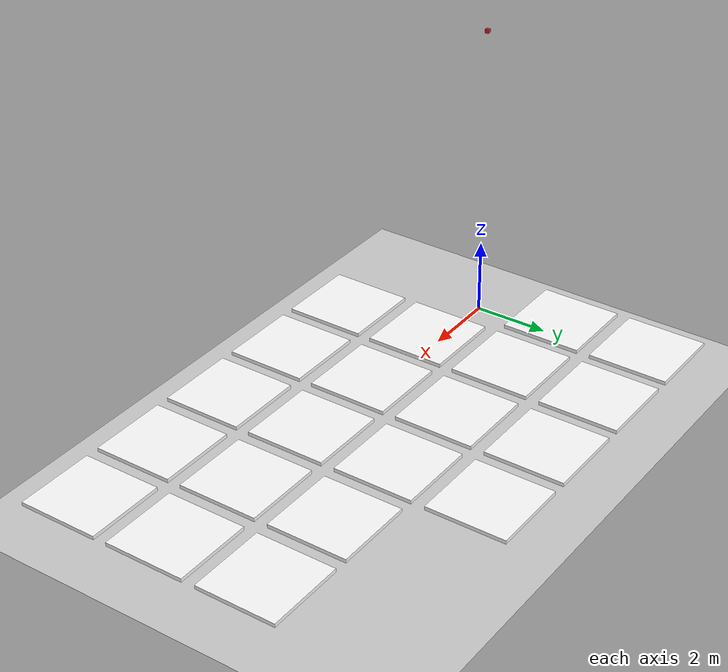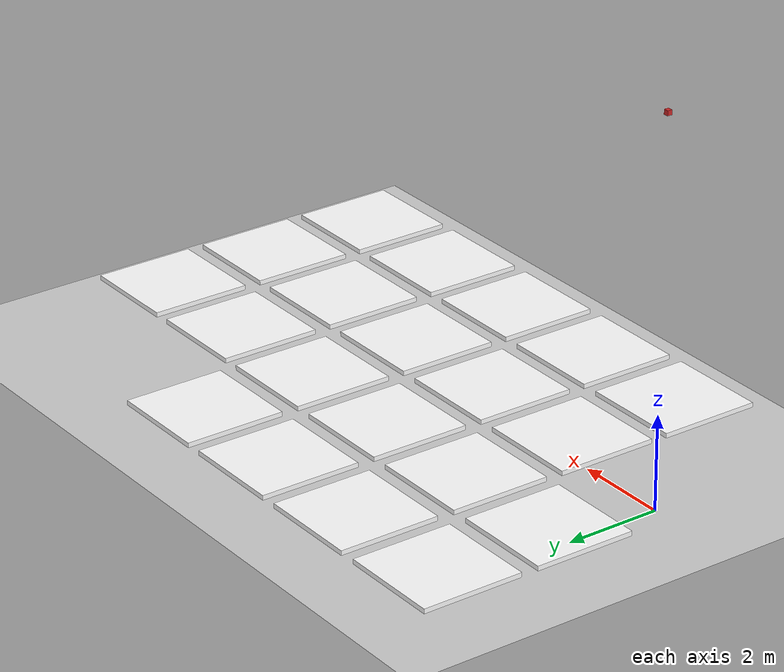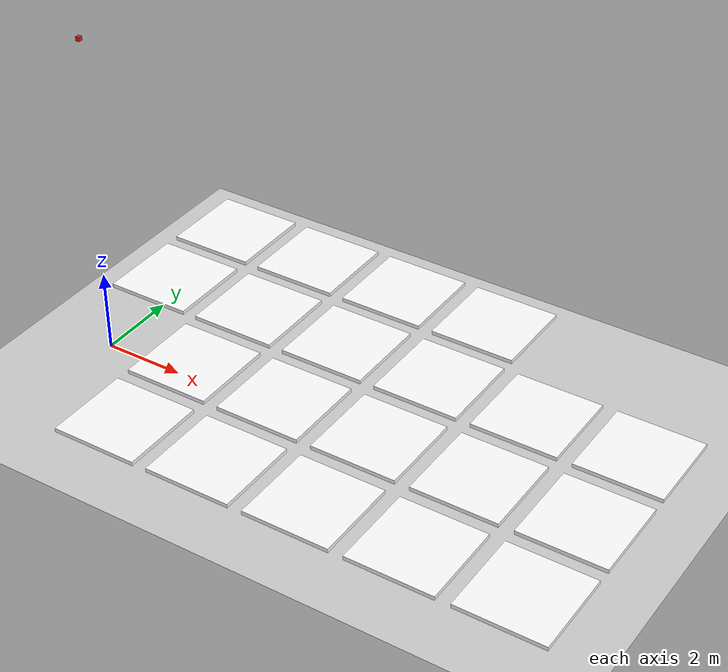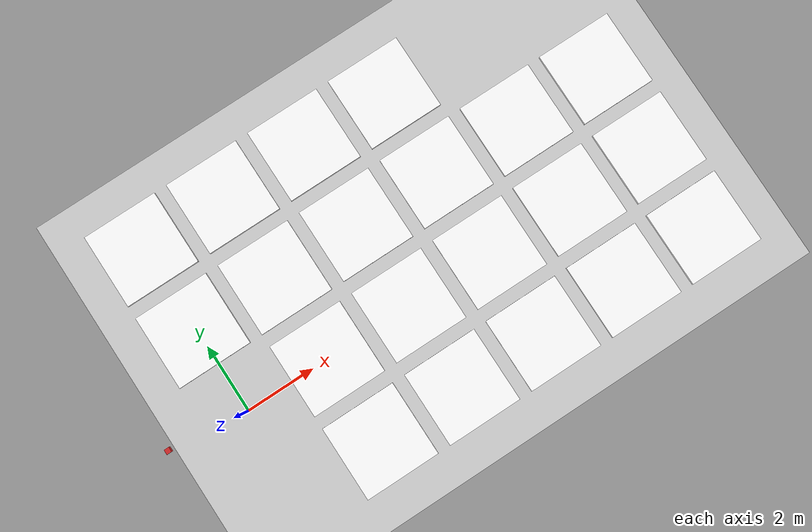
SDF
<sdf version="1.7">
 <world name="default">
  <model name="ground_plane">
   <static>1</static>
   <link name="link">
    <collision name="collision">
     <geometry><plane><normal>0 0 1</normal><size>100 100</size></plane></geometry>
     <surface>
      <contact><collide_bitmask>65535</collide_bitmask></contact>
      <friction><ode><mu>100</mu><mu2>50</mu2></ode></friction>
     </surface>
    </collision>
    <visual name="visual">
     <cast_shadows>0</cast_shadows>
     <geometry><plane><normal>0 0 1</normal><size>100 100</size></plane></geometry>
     <material>
      <script><uri>file://media/materials/scripts/gazebo.material</uri><name>Gazebo/Grey</name></script>
     </material>
    </visual>
   </link>
  </model>
  <model name="top_view_fuel_cluster_0_6">
   <link name="link">
    <inertial>
     <mass>0.489843</mass>
     <inertia>
      <ixx>0.0410659</ixx>
      <ixy>0</ixy>
      <ixz>0</ixz>
      <iyy>0.0410658</iyy>
      <iyz>0</iyz>
      <izz>0.0816405</izz>
     </inertia>
    </inertial>
    <visual name="visual">
     <geometry><box><size>2.14 2.14 0.099999</size></box></geometry>
     <material>
      <script>
       <uri>model://top_view_fuel_cluster/materials/scripts</uri>
       <uri>model://top_view_fuel_cluster/materials/textures</uri>
       <name>snf/Diffuse</name>
      </script>
      <shader type="pixel"><normal_map>__default__</normal_map></shader>
      <ambient>0.3 0.3 0.3 1</ambient>
      <diffuse>1 1 1 1</diffuse>
      <specular>0.01 0.01 0.01 1</specular>
      <emissive>0 0 0 1</emissive>
     </material>
    </visual>
    <collision name="collision">
     <geometry><box><size>2.14 2.14 0.100001</size></box></geometry>
     <surface>
      <friction>
       <ode><mu>1</mu><mu2>1</mu2><fdir1>0 0 0</fdir1><slip1>0</slip1><slip2>0</slip2></ode>
       <torsional>
        <coefficient>1</coefficient>
        <patch_radius>0</patch_radius>
        <surface_radius>0</surface_radius>
        <use_patch_radius>1</use_patch_radius>
        <ode><slip>0</slip></ode>
       </torsional>
      </friction>
      <bounce><restitution_coefficient>0</restitution_coefficient><threshold>1e+06</threshold></bounce>
      <contact>
       <collide_without_contact>0</collide_without_contact>
       <collide_without_contact_bitmask>1</collide_without_contact_bitmask>
       <collide_bitmask>1</collide_bitmask>
       <ode>
        <soft_cfm>0</soft_cfm>
        <soft_erp>0.2</soft_erp>
        <kp>1e+13</kp>
        <kd>1</kd>
        <max_vel>0.01</max_vel>
        <min_depth>0</min_depth>
       </ode>
       <bullet>
        <split_impulse>1</split_impulse>
        <split_impulse_penetration_threshold>-0.01</split_impulse_penetration_threshold>
        <soft_cfm>0</soft_cfm>
        <soft_erp>0.2</soft_erp>
        <kp>1e+13</kp>
        <kd>1</kd>
       </bullet>
      </contact>
     </surface>
    </collision>
   </link>
   <static>0</static>
   <pose>2.5 0 0.5 0 -0 0</pose>
  </model>
  <model name="top_view_fuel_cluster_0_7">
   <link name="link">
    <inertial>
     <mass>0.489843</mass>
     <inertia>
      <ixx>0.0410659</ixx>
      <ixy>0</ixy>
      <ixz>0</ixz>
      <iyy>0.0410658</iyy>
      <iyz>0</iyz>
      <izz>0.0816405</izz>
     </inertia>
    </inertial>
    <visual name="visual">
     <geometry><box><size>2.14 2.14 0.099999</size></box></geometry>
     <material>
      <script>
       <uri>model://top_view_fuel_cluster/materials/scripts</uri>
       <uri>model://top_view_fuel_cluster/materials/textures</uri>
       <name>snf/Diffuse</name>
      </script>
      <shader type="pixel"><normal_map>__default__</normal_map></shader>
      <ambient>0.3 0.3 0.3 1</ambient>
      <diffuse>1 1 1 1</diffuse>
      <specular>0.01 0.01 0.01 1</specular>
      <emissive>0 0 0 1</emissive>
     </material>
    </visual>
    <collision name="collision">
     <geometry><box><size>2.14 2.14 0.100001</size></box></geometry>
     <surface>
      <friction>
       <ode><mu>1</mu><mu2>1</mu2><fdir1>0 0 0</fdir1><slip1>0</slip1><slip2>0</slip2></ode>
       <torsional>
        <coefficient>1</coefficient>
        <patch_radius>0</patch_radius>
        <surface_radius>0</surface_radius>
        <use_patch_radius>1</use_patch_radius>
        <ode><slip>0</slip></ode>
       </torsional>
      </friction>
      <bounce><restitution_coefficient>0</restitution_coefficient><threshold>1e+06</threshold></bounce>
      <contact>
       <collide_without_contact>0</collide_without_contact>
       <collide_without_contact_bitmask>1</collide_without_contact_bitmask>
       <collide_bitmask>1</collide_bitmask>
       <ode>
        <soft_cfm>0</soft_cfm>
        <soft_erp>0.2</soft_erp>
        <kp>1e+13</kp>
        <kd>1</kd>
        <max_vel>0.01</max_vel>
        <min_depth>0</min_depth>
       </ode>
       <bullet>
        <split_impulse>1</split_impulse>
        <split_impulse_penetration_threshold>-0.01</split_impulse_penetration_threshold>
        <soft_cfm>0</soft_cfm>
        <soft_erp>0.2</soft_erp>
        <kp>1e+13</kp>
        <kd>1</kd>
       </bullet>
      </contact>
     </surface>
    </collision>
   </link>
   <static>0</static>
   <pose>5 0 0.5 0 -0 0</pose>
  </model>
  <model name="top_view_fuel_cluster_0_8">
   <link name="link">
    <inertial>
     <mass>0.489843</mass>
     <inertia>
      <ixx>0.0410659</ixx>
      <ixy>0</ixy>
      <ixz>0</ixz>
      <iyy>0.0410658</iyy>
      <iyz>0</iyz>
      <izz>0.0816405</izz>
     </inertia>
    </inertial>
    <visual name="visual">
     <geometry><box><size>2.14 2.14 0.099999</size></box></geometry>
     <material>
      <script>
       <uri>model://top_view_fuel_cluster/materials/scripts</uri>
       <uri>model://top_view_fuel_cluster/materials/textures</uri>
       <name>snf/Diffuse</name>
      </script>
      <shader type="pixel"><normal_map>__default__</normal_map></shader>
      <ambient>0.3 0.3 0.3 1</ambient>
      <diffuse>1 1 1 1</diffuse>
      <specular>0.01 0.01 0.01 1</specular>
      <emissive>0 0 0 1</emissive>
     </material>
    </visual>
    <collision name="collision">
     <geometry><box><size>2.14 2.14 0.100001</size></box></geometry>
     <surface>
      <friction>
       <ode><mu>1</mu><mu2>1</mu2><fdir1>0 0 0</fdir1><slip1>0</slip1><slip2>0</slip2></ode>
       <torsional>
        <coefficient>1</coefficient>
        <patch_radius>0</patch_radius>
        <surface_radius>0</surface_radius>
        <use_patch_radius>1</use_patch_radius>
        <ode><slip>0</slip></ode>
       </torsional>
      </friction>
      <bounce><restitution_coefficient>0</restitution_coefficient><threshold>1e+06</threshold></bounce>
      <contact>
       <collide_without_contact>0</collide_without_contact>
       <collide_without_contact_bitmask>1</collide_without_contact_bitmask>
       <collide_bitmask>1</collide_bitmask>
       <ode>
        <soft_cfm>0</soft_cfm>
        <soft_erp>0.2</soft_erp>
        <kp>1e+13</kp>
        <kd>1</kd>
        <max_vel>0.01</max_vel>
        <min_depth>0</min_depth>
       </ode>
       <bullet>
        <split_impulse>1</split_impulse>
        <split_impulse_penetration_threshold>-0.01</split_impulse_penetration_threshold>
        <soft_cfm>0</soft_cfm>
        <soft_erp>0.2</soft_erp>
        <kp>1e+13</kp>
        <kd>1</kd>
       </bullet>
      </contact>
     </surface>
    </collision>
   </link>
   <static>0</static>
   <pose>7.5 0 0.5 0 -0 0</pose>
  </model>
  <model name="top_view_fuel_cluster_0_9">
   <link name="link">
    <inertial>
     <mass>0.489843</mass>
     <inertia>
      <ixx>0.0410659</ixx>
      <ixy>0</ixy>
      <ixz>0</ixz>
      <iyy>0.0410658</iyy>
      <iyz>0</iyz>
      <izz>0.0816405</izz>
     </inertia>
    </inertial>
    <visual name="visual">
     <geometry><box><size>2.14 2.14 0.099999</size></box></geometry>
     <material>
      <script>
       <uri>model://top_view_fuel_cluster/materials/scripts</uri>
       <uri>model://top_view_fuel_cluster/materials/textures</uri>
       <name>snf/Diffuse</name>
      </script>
      <shader type="pixel"><normal_map>__default__</normal_map></shader>
      <ambient>0.3 0.3 0.3 1</ambient>
      <diffuse>1 1 1 1</diffuse>
      <specular>0.01 0.01 0.01 1</specular>
      <emissive>0 0 0 1</emissive>
     </material>
    </visual>
    <collision name="collision">
     <geometry><box><size>2.14 2.14 0.100001</size></box></geometry>
     <surface>
      <friction>
       <ode><mu>1</mu><mu2>1</mu2><fdir1>0 0 0</fdir1><slip1>0</slip1><slip2>0</slip2></ode>
       <torsional>
        <coefficient>1</coefficient>
        <patch_radius>0</patch_radius>
        <surface_radius>0</surface_radius>
        <use_patch_radius>1</use_patch_radius>
        <ode><slip>0</slip></ode>
       </torsional>
      </friction>
      <bounce><restitution_coefficient>0</restitution_coefficient><threshold>1e+06</threshold></bounce>
      <contact>
       <collide_without_contact>0</collide_without_contact>
       <collide_without_contact_bitmask>1</collide_without_contact_bitmask>
       <collide_bitmask>1</collide_bitmask>
       <ode>
        <soft_cfm>0</soft_cfm>
        <soft_erp>0.2</soft_erp>
        <kp>1e+13</kp>
        <kd>1</kd>
        <max_vel>0.01</max_vel>
        <min_depth>0</min_depth>
       </ode>
       <bullet>
        <split_impulse>1</split_impulse>
        <split_impulse_penetration_threshold>-0.01</split_impulse_penetration_threshold>
        <soft_cfm>0</soft_cfm>
        <soft_erp>0.2</soft_erp>
        <kp>1e+13</kp>
        <kd>1</kd>
       </bullet>
      </contact>
     </surface>
    </collision>
   </link>
   <static>0</static>
   <pose>10 0 0.5 0 -0 0</pose>
  </model>
  <model name="top_view_fuel_cluster_0_10">
   <link name="link">
    <inertial>
     <mass>0.489843</mass>
     <inertia>
      <ixx>0.0410659</ixx>
      <ixy>0</ixy>
      <ixz>0</ixz>
      <iyy>0.0410658</iyy>
      <iyz>0</iyz>
      <izz>0.0816405</izz>
     </inertia>
    </inertial>
    <visual name="visual">
     <geometry><box><size>2.14 2.14 0.099999</size></box></geometry>
     <material>
      <script>
       <uri>model://top_view_fuel_cluster/materials/scripts</uri>
       <uri>model://top_view_fuel_cluster/materials/textures</uri>
       <name>snf/Diffuse</name>
      </script>
      <shader type="pixel"><normal_map>__default__</normal_map></shader>
      <ambient>0.3 0.3 0.3 1</ambient>
      <diffuse>1 1 1 1</diffuse>
      <specular>0.01 0.01 0.01 1</specular>
      <emissive>0 0 0 1</emissive>
     </material>
    </visual>
    <collision name="collision">
     <geometry><box><size>2.14 2.14 0.100001</size></box></geometry>
     <surface>
      <friction>
       <ode><mu>1</mu><mu2>1</mu2><fdir1>0 0 0</fdir1><slip1>0</slip1><slip2>0</slip2></ode>
       <torsional>
        <coefficient>1</coefficient>
        <patch_radius>0</patch_radius>
        <surface_radius>0</surface_radius>
        <use_patch_radius>1</use_patch_radius>
        <ode><slip>0</slip></ode>
       </torsional>
      </friction>
      <bounce><restitution_coefficient>0</restitution_coefficient><threshold>1e+06</threshold></bounce>
      <contact>
       <collide_without_contact>0</collide_without_contact>
       <collide_without_contact_bitmask>1</collide_without_contact_bitmask>
       <collide_bitmask>1</collide_bitmask>
       <ode>
        <soft_cfm>0</soft_cfm>
        <soft_erp>0.2</soft_erp>
        <kp>1e+13</kp>
        <kd>1</kd>
        <max_vel>0.01</max_vel>
        <min_depth>0</min_depth>
       </ode>
       <bullet>
        <split_impulse>1</split_impulse>
        <split_impulse_penetration_threshold>-0.01</split_impulse_penetration_threshold>
        <soft_cfm>0</soft_cfm>
        <soft_erp>0.2</soft_erp>
        <kp>1e+13</kp>
        <kd>1</kd>
       </bullet>
      </contact>
     </surface>
    </collision>
   </link>
   <static>0</static>
   <pose>12.5 0 0.5 0 -0 0</pose>
  </model>
  <model name="top_view_fuel_cluster_5_6">
   <link name="link">
    <inertial>
     <mass>0.489843</mass>
     <inertia>
      <ixx>0.0410659</ixx>
      <ixy>0</ixy>
      <ixz>0</ixz>
      <iyy>0.0410658</iyy>
      <iyz>0</iyz>
      <izz>0.0816405</izz>
     </inertia>
    </inertial>
    <visual name="visual">
     <geometry><box><size>2.14 2.14 0.099999</size></box></geometry>
     <material>
      <script>
       <uri>model://top_view_fuel_cluster/materials/scripts</uri>
       <uri>model://top_view_fuel_cluster/materials/textures</uri>
       <name>snf/Diffuse</name>
      </script>
      <shader type="pixel"><normal_map>__default__</normal_map></shader>
      <ambient>0.3 0.3 0.3 1</ambient>
      <diffuse>1 1 1 1</diffuse>
      <specular>0.01 0.01 0.01 1</specular>
      <emissive>0 0 0 1</emissive>
     </material>
    </visual>
    <collision name="collision">
     <geometry><box><size>2.14 2.14 0.100001</size></box></geometry>
     <surface>
      <friction>
       <ode><mu>1</mu><mu2>1</mu2><fdir1>0 0 0</fdir1><slip1>0</slip1><slip2>0</slip2></ode>
       <torsional>
        <coefficient>1</coefficient>
        <patch_radius>0</patch_radius>
        <surface_radius>0</surface_radius>
        <use_patch_radius>1</use_patch_radius>
        <ode><slip>0</slip></ode>
       </torsional>
      </friction>
      <bounce><restitution_coefficient>0</restitution_coefficient><threshold>1e+06</threshold></bounce>
      <contact>
       <collide_without_contact>0</collide_without_contact>
       <collide_without_contact_bitmask>1</collide_without_contact_bitmask>
       <collide_bitmask>1</collide_bitmask>
       <ode>
        <soft_cfm>0</soft_cfm>
        <soft_erp>0.2</soft_erp>
        <kp>1e+13</kp>
        <kd>1</kd>
        <max_vel>0.01</max_vel>
        <min_depth>0</min_depth>
       </ode>
       <bullet>
        <split_impulse>1</split_impulse>
        <split_impulse_penetration_threshold>-0.01</split_impulse_penetration_threshold>
        <soft_cfm>0</soft_cfm>
        <soft_erp>0.2</soft_erp>
        <kp>1e+13</kp>
        <kd>1</kd>
       </bullet>
      </contact>
     </surface>
    </collision>
   </link>
   <static>0</static>
   <pose>2.5 -2.5 0.5 0 -0 0</pose>
  </model>
  <model name="top_view_fuel_cluster_5_7">
   <link name="link">
    <inertial>
     <mass>0.489843</mass>
     <inertia>
      <ixx>0.0410659</ixx>
      <ixy>0</ixy>
      <ixz>0</ixz>
      <iyy>0.0410658</iyy>
      <iyz>0</iyz>
      <izz>0.0816405</izz>
     </inertia>
    </inertial>
    <visual name="visual">
     <geometry><box><size>2.14 2.14 0.099999</size></box></geometry>
     <material>
      <script>
       <uri>model://top_view_fuel_cluster/materials/scripts</uri>
       <uri>model://top_view_fuel_cluster/materials/textures</uri>
       <name>snf/Diffuse</name>
      </script>
      <shader type="pixel"><normal_map>__default__</normal_map></shader>
      <ambient>0.3 0.3 0.3 1</ambient>
      <diffuse>1 1 1 1</diffuse>
      <specular>0.01 0.01 0.01 1</specular>
      <emissive>0 0 0 1</emissive>
     </material>
    </visual>
    <collision name="collision">
     <geometry><box><size>2.14 2.14 0.100001</size></box></geometry>
     <surface>
      <friction>
       <ode><mu>1</mu><mu2>1</mu2><fdir1>0 0 0</fdir1><slip1>0</slip1><slip2>0</slip2></ode>
       <torsional>
        <coefficient>1</coefficient>
        <patch_radius>0</patch_radius>
        <surface_radius>0</surface_radius>
        <use_patch_radius>1</use_patch_radius>
        <ode><slip>0</slip></ode>
       </torsional>
      </friction>
      <bounce><restitution_coefficient>0</restitution_coefficient><threshold>1e+06</threshold></bounce>
      <contact>
       <collide_without_contact>0</collide_without_contact>
       <collide_without_contact_bitmask>1</collide_without_contact_bitmask>
       <collide_bitmask>1</collide_bitmask>
       <ode>
        <soft_cfm>0</soft_cfm>
        <soft_erp>0.2</soft_erp>
        <kp>1e+13</kp>
        <kd>1</kd>
        <max_vel>0.01</max_vel>
        <min_depth>0</min_depth>
       </ode>
       <bullet>
        <split_impulse>1</split_impulse>
        <split_impulse_penetration_threshold>-0.01</split_impulse_penetration_threshold>
        <soft_cfm>0</soft_cfm>
        <soft_erp>0.2</soft_erp>
        <kp>1e+13</kp>
        <kd>1</kd>
       </bullet>
      </contact>
     </surface>
    </collision>
   </link>
   <static>0</static>
   <pose>5 -2.5 0.5 0 -0 0</pose>
  </model>
  <model name="top_view_fuel_cluster_5_8">
   <link name="link">
    <inertial>
     <mass>0.489843</mass>
     <inertia>
      <ixx>0.0410659</ixx>
      <ixy>0</ixy>
      <ixz>0</ixz>
      <iyy>0.0410658</iyy>
      <iyz>0</iyz>
      <izz>0.0816405</izz>
     </inertia>
    </inertial>
    <visual name="visual">
     <geometry><box><size>2.14 2.14 0.099999</size></box></geometry>
     <material>
      <script>
       <uri>model://top_view_fuel_cluster/materials/scripts</uri>
       <uri>model://top_view_fuel_cluster/materials/textures</uri>
       <name>snf/Diffuse</name>
      </script>
      <shader type="pixel"><normal_map>__default__</normal_map></shader>
      <ambient>0.3 0.3 0.3 1</ambient>
      <diffuse>1 1 1 1</diffuse>
      <specular>0.01 0.01 0.01 1</specular>
      <emissive>0 0 0 1</emissive>
     </material>
    </visual>
    <collision name="collision">
     <geometry><box><size>2.14 2.14 0.100001</size></box></geometry>
     <surface>
      <friction>
       <ode><mu>1</mu><mu2>1</mu2><fdir1>0 0 0</fdir1><slip1>0</slip1><slip2>0</slip2></ode>
       <torsional>
        <coefficient>1</coefficient>
        <patch_radius>0</patch_radius>
        <surface_radius>0</surface_radius>
        <use_patch_radius>1</use_patch_radius>
        <ode><slip>0</slip></ode>
       </torsional>
      </friction>
      <bounce><restitution_coefficient>0</restitution_coefficient><threshold>1e+06</threshold></bounce>
      <contact>
       <collide_without_contact>0</collide_without_contact>
       <collide_without_contact_bitmask>1</collide_without_contact_bitmask>
       <collide_bitmask>1</collide_bitmask>
       <ode>
        <soft_cfm>0</soft_cfm>
        <soft_erp>0.2</soft_erp>
        <kp>1e+13</kp>
        <kd>1</kd>
        <max_vel>0.01</max_vel>
        <min_depth>0</min_depth>
       </ode>
       <bullet>
        <split_impulse>1</split_impulse>
        <split_impulse_penetration_threshold>-0.01</split_impulse_penetration_threshold>
        <soft_cfm>0</soft_cfm>
        <soft_erp>0.2</soft_erp>
        <kp>1e+13</kp>
        <kd>1</kd>
       </bullet>
      </contact>
     </surface>
    </collision>
   </link>
   <static>0</static>
   <pose>7.5 -2.5 0.5 0 -0 0</pose>
  </model>
  <model name="top_view_fuel_cluster_5_9">
   <link name="link">
    <inertial>
     <mass>0.489843</mass>
     <inertia>
      <ixx>0.0410659</ixx>
      <ixy>0</ixy>
      <ixz>0</ixz>
      <iyy>0.0410658</iyy>
      <iyz>0</iyz>
      <izz>0.0816405</izz>
     </inertia>
    </inertial>
    <visual name="visual">
     <geometry><box><size>2.14 2.14 0.099999</size></box></geometry>
     <material>
      <script>
       <uri>model://top_view_fuel_cluster/materials/scripts</uri>
       <uri>model://top_view_fuel_cluster/materials/textures</uri>
       <name>snf/Diffuse</name>
      </script>
      <shader type="pixel"><normal_map>__default__</normal_map></shader>
      <ambient>0.3 0.3 0.3 1</ambient>
      <diffuse>1 1 1 1</diffuse>
      <specular>0.01 0.01 0.01 1</specular>
      <emissive>0 0 0 1</emissive>
     </material>
    </visual>
    <collision name="collision">
     <geometry><box><size>2.14 2.14 0.100001</size></box></geometry>
     <surface>
      <friction>
       <ode><mu>1</mu><mu2>1</mu2><fdir1>0 0 0</fdir1><slip1>0</slip1><slip2>0</slip2></ode>
       <torsional>
        <coefficient>1</coefficient>
        <patch_radius>0</patch_radius>
        <surface_radius>0</surface_radius>
        <use_patch_radius>1</use_patch_radius>
        <ode><slip>0</slip></ode>
       </torsional>
      </friction>
      <bounce><restitution_coefficient>0</restitution_coefficient><threshold>1e+06</threshold></bounce>
      <contact>
       <collide_without_contact>0</collide_without_contact>
       <collide_without_contact_bitmask>1</collide_without_contact_bitmask>
       <collide_bitmask>1</collide_bitmask>
       <ode>
        <soft_cfm>0</soft_cfm>
        <soft_erp>0.2</soft_erp>
        <kp>1e+13</kp>
        <kd>1</kd>
        <max_vel>0.01</max_vel>
        <min_depth>0</min_depth>
       </ode>
       <bullet>
        <split_impulse>1</split_impulse>
        <split_impulse_penetration_threshold>-0.01</split_impulse_penetration_threshold>
        <soft_cfm>0</soft_cfm>
        <soft_erp>0.2</soft_erp>
        <kp>1e+13</kp>
        <kd>1</kd>
       </bullet>
      </contact>
     </surface>
    </collision>
   </link>
   <static>0</static>
   <pose>10 -2.5 0.5 0 -0 0</pose>
  </model>
  <model name="top_view_fuel_cluster_5_10">
   <link name="link">
    <inertial>
     <mass>0.489843</mass>
     <inertia>
      <ixx>0.0410659</ixx>
      <ixy>0</ixy>
      <ixz>0</ixz>
      <iyy>0.0410658</iyy>
      <iyz>0</iyz>
      <izz>0.0816405</izz>
     </inertia>
    </inertial>
    <visual name="visual">
     <geometry><box><size>2.14 2.14 0.099999</size></box></geometry>
     <material>
      <script>
       <uri>model://top_view_fuel_cluster/materials/scripts</uri>
       <uri>model://top_view_fuel_cluster/materials/textures</uri>
       <name>snf/Diffuse</name>
      </script>
      <shader type="pixel"><normal_map>__default__</normal_map></shader>
      <ambient>0.3 0.3 0.3 1</ambient>
      <diffuse>1 1 1 1</diffuse>
      <specular>0.01 0.01 0.01 1</specular>
      <emissive>0 0 0 1</emissive>
     </material>
    </visual>
    <collision name="collision">
     <geometry><box><size>2.14 2.14 0.100001</size></box></geometry>
     <surface>
      <friction>
       <ode><mu>1</mu><mu2>1</mu2><fdir1>0 0 0</fdir1><slip1>0</slip1><slip2>0</slip2></ode>
       <torsional>
        <coefficient>1</coefficient>
        <patch_radius>0</patch_radius>
        <surface_radius>0</surface_radius>
        <use_patch_radius>1</use_patch_radius>
        <ode><slip>0</slip></ode>
       </torsional>
      </friction>
      <bounce><restitution_coefficient>0</restitution_coefficient><threshold>1e+06</threshold></bounce>
      <contact>
       <collide_without_contact>0</collide_without_contact>
       <collide_without_contact_bitmask>1</collide_without_contact_bitmask>
       <collide_bitmask>1</collide_bitmask>
       <ode>
        <soft_cfm>0</soft_cfm>
        <soft_erp>0.2</soft_erp>
        <kp>1e+13</kp>
        <kd>1</kd>
        <max_vel>0.01</max_vel>
        <min_depth>0</min_depth>
       </ode>
       <bullet>
        <split_impulse>1</split_impulse>
        <split_impulse_penetration_threshold>-0.01</split_impulse_penetration_threshold>
        <soft_cfm>0</soft_cfm>
        <soft_erp>0.2</soft_erp>
        <kp>1e+13</kp>
        <kd>1</kd>
       </bullet>
      </contact>
     </surface>
    </collision>
   </link>
   <static>0</static>
   <pose>12.5 -2.5 0.5 0 -0 0</pose>
  </model>
  <model name="top_view_fuel_cluster_6_0">
   <link name="link">
    <inertial>
     <mass>0.489843</mass>
     <inertia>
      <ixx>0.0410659</ixx>
      <ixy>0</ixy>
      <ixz>0</ixz>
      <iyy>0.0410658</iyy>
      <iyz>0</iyz>
      <izz>0.0816405</izz>
     </inertia>
    </inertial>
    <visual name="visual">
     <geometry><box><size>2.14 2.14 0.099999</size></box></geometry>
     <material>
      <script>
       <uri>model://top_view_fuel_cluster/materials/scripts</uri>
       <uri>model://top_view_fuel_cluster/materials/textures</uri>
       <name>snf/Diffuse</name>
      </script>
      <shader type="pixel"><normal_map>__default__</normal_map></shader>
      <ambient>0.3 0.3 0.3 1</ambient>
      <diffuse>1 1 1 1</diffuse>
      <specular>0.01 0.01 0.01 1</specular>
      <emissive>0 0 0 1</emissive>
     </material>
    </visual>
    <collision name="collision">
     <geometry><box><size>2.14 2.14 0.100001</size></box></geometry>
     <surface>
      <friction>
       <ode><mu>1</mu><mu2>1</mu2><fdir1>0 0 0</fdir1><slip1>0</slip1><slip2>0</slip2></ode>
       <torsional>
        <coefficient>1</coefficient>
        <patch_radius>0</patch_radius>
        <surface_radius>0</surface_radius>
        <use_patch_radius>1</use_patch_radius>
        <ode><slip>0</slip></ode>
       </torsional>
      </friction>
      <bounce><restitution_coefficient>0</restitution_coefficient><threshold>1e+06</threshold></bounce>
      <contact>
       <collide_without_contact>0</collide_without_contact>
       <collide_without_contact_bitmask>1</collide_without_contact_bitmask>
       <collide_bitmask>1</collide_bitmask>
       <ode>
        <soft_cfm>0</soft_cfm>
        <soft_erp>0.2</soft_erp>
        <kp>1e+13</kp>
        <kd>1</kd>
        <max_vel>0.01</max_vel>
        <min_depth>0</min_depth>
       </ode>
       <bullet>
        <split_impulse>1</split_impulse>
        <split_impulse_penetration_threshold>-0.01</split_impulse_penetration_threshold>
        <soft_cfm>0</soft_cfm>
        <soft_erp>0.2</soft_erp>
        <kp>1e+13</kp>
        <kd>1</kd>
       </bullet>
      </contact>
     </surface>
    </collision>
   </link>
   <static>0</static>
   <pose>0 2.5 0.5 0 0 0</pose>
  </model>
  <model name="top_view_fuel_cluster_6_6">
   <link name="link">
    <inertial>
     <mass>0.489843</mass>
     <inertia>
      <ixx>0.0410659</ixx>
      <ixy>0</ixy>
      <ixz>0</ixz>
      <iyy>0.0410658</iyy>
      <iyz>0</iyz>
      <izz>0.0816405</izz>
     </inertia>
    </inertial>
    <visual name="visual">
     <geometry><box><size>2.14 2.14 0.099999</size></box></geometry>
     <material>
      <script>
       <uri>model://top_view_fuel_cluster/materials/scripts</uri>
       <uri>model://top_view_fuel_cluster/materials/textures</uri>
       <name>snf/Diffuse</name>
      </script>
      <shader type="pixel"><normal_map>__default__</normal_map></shader>
      <ambient>0.3 0.3 0.3 1</ambient>
      <diffuse>1 1 1 1</diffuse>
      <specular>0.01 0.01 0.01 1</specular>
      <emissive>0 0 0 1</emissive>
     </material>
    </visual>
    <collision name="collision">
     <geometry><box><size>2.14 2.14 0.100001</size></box></geometry>
     <surface>
      <friction>
       <ode><mu>1</mu><mu2>1</mu2><fdir1>0 0 0</fdir1><slip1>0</slip1><slip2>0</slip2></ode>
       <torsional>
        <coefficient>1</coefficient>
        <patch_radius>0</patch_radius>
        <surface_radius>0</surface_radius>
        <use_patch_radius>1</use_patch_radius>
        <ode><slip>0</slip></ode>
       </torsional>
      </friction>
      <bounce><restitution_coefficient>0</restitution_coefficient><threshold>1e+06</threshold></bounce>
      <contact>
       <collide_without_contact>0</collide_without_contact>
       <collide_without_contact_bitmask>1</collide_without_contact_bitmask>
       <collide_bitmask>1</collide_bitmask>
       <ode>
        <soft_cfm>0</soft_cfm>
        <soft_erp>0.2</soft_erp>
        <kp>1e+13</kp>
        <kd>1</kd>
        <max_vel>0.01</max_vel>
        <min_depth>0</min_depth>
       </ode>
       <bullet>
        <split_impulse>1</split_impulse>
        <split_impulse_penetration_threshold>-0.01</split_impulse_penetration_threshold>
        <soft_cfm>0</soft_cfm>
        <soft_erp>0.2</soft_erp>
        <kp>1e+13</kp>
        <kd>1</kd>
       </bullet>
      </contact>
     </surface>
    </collision>
   </link>
   <static>0</static>
   <pose>2.5 2.5 0.5 0 -0 0</pose>
  </model>
  <model name="top_view_fuel_cluster_6_7">
   <link name="link">
    <inertial>
     <mass>0.489843</mass>
     <inertia>
      <ixx>0.0410659</ixx>
      <ixy>0</ixy>
      <ixz>0</ixz>
      <iyy>0.0410658</iyy>
      <iyz>0</iyz>
      <izz>0.0816405</izz>
     </inertia>
    </inertial>
    <visual name="visual">
     <geometry><box><size>2.14 2.14 0.099999</size></box></geometry>
     <material>
      <script>
       <uri>model://top_view_fuel_cluster/materials/scripts</uri>
       <uri>model://top_view_fuel_cluster/materials/textures</uri>
       <name>snf/Diffuse</name>
      </script>
      <shader type="pixel"><normal_map>__default__</normal_map></shader>
      <ambient>0.3 0.3 0.3 1</ambient>
      <diffuse>1 1 1 1</diffuse>
      <specular>0.01 0.01 0.01 1</specular>
      <emissive>0 0 0 1</emissive>
     </material>
    </visual>
    <collision name="collision">
     <geometry><box><size>2.14 2.14 0.100001</size></box></geometry>
     <surface>
      <friction>
       <ode><mu>1</mu><mu2>1</mu2><fdir1>0 0 0</fdir1><slip1>0</slip1><slip2>0</slip2></ode>
       <torsional>
        <coefficient>1</coefficient>
        <patch_radius>0</patch_radius>
        <surface_radius>0</surface_radius>
        <use_patch_radius>1</use_patch_radius>
        <ode><slip>0</slip></ode>
       </torsional>
      </friction>
      <bounce><restitution_coefficient>0</restitution_coefficient><threshold>1e+06</threshold></bounce>
      <contact>
       <collide_without_contact>0</collide_without_contact>
       <collide_without_contact_bitmask>1</collide_without_contact_bitmask>
       <collide_bitmask>1</collide_bitmask>
       <ode>
        <soft_cfm>0</soft_cfm>
        <soft_erp>0.2</soft_erp>
        <kp>1e+13</kp>
        <kd>1</kd>
        <max_vel>0.01</max_vel>
        <min_depth>0</min_depth>
       </ode>
       <bullet>
        <split_impulse>1</split_impulse>
        <split_impulse_penetration_threshold>-0.01</split_impulse_penetration_threshold>
        <soft_cfm>0</soft_cfm>
        <soft_erp>0.2</soft_erp>
        <kp>1e+13</kp>
        <kd>1</kd>
       </bullet>
      </contact>
     </surface>
    </collision>
   </link>
   <static>0</static>
   <pose>5 2.5 0.5 0 -0 0</pose>
  </model>
  <model name="top_view_fuel_cluster_6_8">
   <link name="link">
    <inertial>
     <mass>0.489843</mass>
     <inertia>
      <ixx>0.0410659</ixx>
      <ixy>0</ixy>
      <ixz>0</ixz>
      <iyy>0.0410658</iyy>
      <iyz>0</iyz>
      <izz>0.0816405</izz>
     </inertia>
    </inertial>
    <visual name="visual">
     <geometry><box><size>2.14 2.14 0.099999</size></box></geometry>
     <material>
      <script>
       <uri>model://top_view_fuel_cluster/materials/scripts</uri>
       <uri>model://top_view_fuel_cluster/materials/textures</uri>
       <name>snf/Diffuse</name>
      </script>
      <shader type="pixel"><normal_map>__default__</normal_map></shader>
      <ambient>0.3 0.3 0.3 1</ambient>
      <diffuse>1 1 1 1</diffuse>
      <specular>0.01 0.01 0.01 1</specular>
      <emissive>0 0 0 1</emissive>
     </material>
    </visual>
    <collision name="collision">
     <geometry><box><size>2.14 2.14 0.100001</size></box></geometry>
     <surface>
      <friction>
       <ode><mu>1</mu><mu2>1</mu2><fdir1>0 0 0</fdir1><slip1>0</slip1><slip2>0</slip2></ode>
       <torsional>
        <coefficient>1</coefficient>
        <patch_radius>0</patch_radius>
        <surface_radius>0</surface_radius>
        <use_patch_radius>1</use_patch_radius>
        <ode><slip>0</slip></ode>
       </torsional>
      </friction>
      <bounce><restitution_coefficient>0</restitution_coefficient><threshold>1e+06</threshold></bounce>
      <contact>
       <collide_without_contact>0</collide_without_contact>
       <collide_without_contact_bitmask>1</collide_without_contact_bitmask>
       <collide_bitmask>1</collide_bitmask>
       <ode>
        <soft_cfm>0</soft_cfm>
        <soft_erp>0.2</soft_erp>
        <kp>1e+13</kp>
        <kd>1</kd>
        <max_vel>0.01</max_vel>
        <min_depth>0</min_depth>
       </ode>
       <bullet>
        <split_impulse>1</split_impulse>
        <split_impulse_penetration_threshold>-0.01</split_impulse_penetration_threshold>
        <soft_cfm>0</soft_cfm>
        <soft_erp>0.2</soft_erp>
        <kp>1e+13</kp>
        <kd>1</kd>
       </bullet>
      </contact>
     </surface>
    </collision>
   </link>
   <static>0</static>
   <pose>7.5 2.5 0.5 0 -0 0</pose>
  </model>
  <model name="top_view_fuel_cluster_6_9">
   <link name="link">
    <inertial>
     <mass>0.489843</mass>
     <inertia>
      <ixx>0.0410659</ixx>
      <ixy>0</ixy>
      <ixz>0</ixz>
      <iyy>0.0410658</iyy>
      <iyz>0</iyz>
      <izz>0.0816405</izz>
     </inertia>
    </inertial>
    <visual name="visual">
     <geometry><box><size>2.14 2.14 0.099999</size></box></geometry>
     <material>
      <script>
       <uri>model://top_view_fuel_cluster/materials/scripts</uri>
       <uri>model://top_view_fuel_cluster/materials/textures</uri>
       <name>snf/Diffuse</name>
      </script>
      <shader type="pixel"><normal_map>__default__</normal_map></shader>
      <ambient>0.3 0.3 0.3 1</ambient>
      <diffuse>1 1 1 1</diffuse>
      <specular>0.01 0.01 0.01 1</specular>
      <emissive>0 0 0 1</emissive>
     </material>
    </visual>
    <collision name="collision">
     <geometry><box><size>2.14 2.14 0.100001</size></box></geometry>
     <surface>
      <friction>
       <ode><mu>1</mu><mu2>1</mu2><fdir1>0 0 0</fdir1><slip1>0</slip1><slip2>0</slip2></ode>
       <torsional>
        <coefficient>1</coefficient>
        <patch_radius>0</patch_radius>
        <surface_radius>0</surface_radius>
        <use_patch_radius>1</use_patch_radius>
        <ode><slip>0</slip></ode>
       </torsional>
      </friction>
      <bounce><restitution_coefficient>0</restitution_coefficient><threshold>1e+06</threshold></bounce>
      <contact>
       <collide_without_contact>0</collide_without_contact>
       <collide_without_contact_bitmask>1</collide_without_contact_bitmask>
       <collide_bitmask>1</collide_bitmask>
       <ode>
        <soft_cfm>0</soft_cfm>
        <soft_erp>0.2</soft_erp>
        <kp>1e+13</kp>
        <kd>1</kd>
        <max_vel>0.01</max_vel>
        <min_depth>0</min_depth>
       </ode>
       <bullet>
        <split_impulse>1</split_impulse>
        <split_impulse_penetration_threshold>-0.01</split_impulse_penetration_threshold>
        <soft_cfm>0</soft_cfm>
        <soft_erp>0.2</soft_erp>
        <kp>1e+13</kp>
        <kd>1</kd>
       </bullet>
      </contact>
     </surface>
    </collision>
   </link>
   <static>0</static>
   <pose>10 2.5 0.5 0 -0 0</pose>
  </model>
  <model name="top_view_fuel_cluster_6_10">
   <link name="link">
    <inertial>
     <mass>0.489843</mass>
     <inertia>
      <ixx>0.0410659</ixx>
      <ixy>0</ixy>
      <ixz>0</ixz>
      <iyy>0.0410658</iyy>
      <iyz>0</iyz>
      <izz>0.0816405</izz>
     </inertia>
    </inertial>
    <visual name="visual">
     <geometry><box><size>2.14 2.14 0.099999</size></box></geometry>
     <material>
      <script>
       <uri>model://top_view_fuel_cluster/materials/scripts</uri>
       <uri>model://top_view_fuel_cluster/materials/textures</uri>
       <name>snf/Diffuse</name>
      </script>
      <shader type="pixel"><normal_map>__default__</normal_map></shader>
      <ambient>0.3 0.3 0.3 1</ambient>
      <diffuse>1 1 1 1</diffuse>
      <specular>0.01 0.01 0.01 1</specular>
      <emissive>0 0 0 1</emissive>
     </material>
    </visual>
    <collision name="collision">
     <geometry><box><size>2.14 2.14 0.100001</size></box></geometry>
     <surface>
      <friction>
       <ode><mu>1</mu><mu2>1</mu2><fdir1>0 0 0</fdir1><slip1>0</slip1><slip2>0</slip2></ode>
       <torsional>
        <coefficient>1</coefficient>
        <patch_radius>0</patch_radius>
        <surface_radius>0</surface_radius>
        <use_patch_radius>1</use_patch_radius>
        <ode><slip>0</slip></ode>
       </torsional>
      </friction>
      <bounce><restitution_coefficient>0</restitution_coefficient><threshold>1e+06</threshold></bounce>
      <contact>
       <collide_without_contact>0</collide_without_contact>
       <collide_without_contact_bitmask>1</collide_without_contact_bitmask>
       <collide_bitmask>1</collide_bitmask>
       <ode>
        <soft_cfm>0</soft_cfm>
        <soft_erp>0.2</soft_erp>
        <kp>1e+13</kp>
        <kd>1</kd>
        <max_vel>0.01</max_vel>
        <min_depth>0</min_depth>
       </ode>
       <bullet>
        <split_impulse>1</split_impulse>
        <split_impulse_penetration_threshold>-0.01</split_impulse_penetration_threshold>
        <soft_cfm>0</soft_cfm>
        <soft_erp>0.2</soft_erp>
        <kp>1e+13</kp>
        <kd>1</kd>
       </bullet>
      </contact>
     </surface>
    </collision>
   </link>
   <static>0</static>
   <pose>12.5 2.5 0.5 0 -0 0</pose>
  </model>
  <model name="top_view_fuel_cluster_7_0">
   <link name="link">
    <inertial>
     <mass>0.489843</mass>
     <inertia>
      <ixx>0.0410659</ixx>
      <ixy>0</ixy>
      <ixz>0</ixz>
      <iyy>0.0410658</iyy>
      <iyz>0</iyz>
      <izz>0.0816405</izz>
     </inertia>
    </inertial>
    <visual name="visual">
     <geometry><box><size>2.14 2.14 0.099999</size></box></geometry>
     <material>
      <script>
       <uri>model://top_view_fuel_cluster/materials/scripts</uri>
       <uri>model://top_view_fuel_cluster/materials/textures</uri>
       <name>snf/Diffuse</name>
      </script>
      <shader type="pixel"><normal_map>__default__</normal_map></shader>
      <ambient>0.3 0.3 0.3 1</ambient>
      <diffuse>1 1 1 1</diffuse>
      <specular>0.01 0.01 0.01 1</specular>
      <emissive>0 0 0 1</emissive>
     </material>
    </visual>
    <collision name="collision">
     <geometry><box><size>2.14 2.14 0.100001</size></box></geometry>
     <surface>
      <friction>
       <ode><mu>1</mu><mu2>1</mu2><fdir1>0 0 0</fdir1><slip1>0</slip1><slip2>0</slip2></ode>
       <torsional>
        <coefficient>1</coefficient>
        <patch_radius>0</patch_radius>
        <surface_radius>0</surface_radius>
        <use_patch_radius>1</use_patch_radius>
        <ode><slip>0</slip></ode>
       </torsional>
      </friction>
      <bounce><restitution_coefficient>0</restitution_coefficient><threshold>1e+06</threshold></bounce>
      <contact>
       <collide_without_contact>0</collide_without_contact>
       <collide_without_contact_bitmask>1</collide_without_contact_bitmask>
       <collide_bitmask>1</collide_bitmask>
       <ode>
        <soft_cfm>0</soft_cfm>
        <soft_erp>0.2</soft_erp>
        <kp>1e+13</kp>
        <kd>1</kd>
        <max_vel>0.01</max_vel>
        <min_depth>0</min_depth>
       </ode>
       <bullet>
        <split_impulse>1</split_impulse>
        <split_impulse_penetration_threshold>-0.01</split_impulse_penetration_threshold>
        <soft_cfm>0</soft_cfm>
        <soft_erp>0.2</soft_erp>
        <kp>1e+13</kp>
        <kd>1</kd>
       </bullet>
      </contact>
     </surface>
    </collision>
   </link>
   <static>0</static>
   <pose>0 5 0.5 0 0 0</pose>
  </model>
  <model name="top_view_fuel_cluster_7_6">
   <link name="link">
    <inertial>
     <mass>0.489843</mass>
     <inertia>
      <ixx>0.0410659</ixx>
      <ixy>0</ixy>
      <ixz>0</ixz>
      <iyy>0.0410658</iyy>
      <iyz>0</iyz>
      <izz>0.0816405</izz>
     </inertia>
    </inertial>
    <visual name="visual">
     <geometry><box><size>2.14 2.14 0.099999</size></box></geometry>
     <material>
      <script>
       <uri>model://top_view_fuel_cluster/materials/scripts</uri>
       <uri>model://top_view_fuel_cluster/materials/textures</uri>
       <name>snf/Diffuse</name>
      </script>
      <shader type="pixel"><normal_map>__default__</normal_map></shader>
      <ambient>0.3 0.3 0.3 1</ambient>
      <diffuse>1 1 1 1</diffuse>
      <specular>0.01 0.01 0.01 1</specular>
      <emissive>0 0 0 1</emissive>
     </material>
    </visual>
    <collision name="collision">
     <geometry><box><size>2.14 2.14 0.100001</size></box></geometry>
     <surface>
      <friction>
       <ode><mu>1</mu><mu2>1</mu2><fdir1>0 0 0</fdir1><slip1>0</slip1><slip2>0</slip2></ode>
       <torsional>
        <coefficient>1</coefficient>
        <patch_radius>0</patch_radius>
        <surface_radius>0</surface_radius>
        <use_patch_radius>1</use_patch_radius>
        <ode><slip>0</slip></ode>
       </torsional>
      </friction>
      <bounce><restitution_coefficient>0</restitution_coefficient><threshold>1e+06</threshold></bounce>
      <contact>
       <collide_without_contact>0</collide_without_contact>
       <collide_without_contact_bitmask>1</collide_without_contact_bitmask>
       <collide_bitmask>1</collide_bitmask>
       <ode>
        <soft_cfm>0</soft_cfm>
        <soft_erp>0.2</soft_erp>
        <kp>1e+13</kp>
        <kd>1</kd>
        <max_vel>0.01</max_vel>
        <min_depth>0</min_depth>
       </ode>
       <bullet>
        <split_impulse>1</split_impulse>
        <split_impulse_penetration_threshold>-0.01</split_impulse_penetration_threshold>
        <soft_cfm>0</soft_cfm>
        <soft_erp>0.2</soft_erp>
        <kp>1e+13</kp>
        <kd>1</kd>
       </bullet>
      </contact>
     </surface>
    </collision>
   </link>
   <static>0</static>
   <pose>2.5 5 0.5 0 -0 0</pose>
  </model>
  <model name="top_view_fuel_cluster_7_7">
   <link name="link">
    <inertial>
     <mass>0.489843</mass>
     <inertia>
      <ixx>0.0410659</ixx>
      <ixy>0</ixy>
      <ixz>0</ixz>
      <iyy>0.0410658</iyy>
      <iyz>0</iyz>
      <izz>0.0816405</izz>
     </inertia>
    </inertial>
    <visual name="visual">
     <geometry><box><size>2.14 2.14 0.099999</size></box></geometry>
     <material>
      <script>
       <uri>model://top_view_fuel_cluster/materials/scripts</uri>
       <uri>model://top_view_fuel_cluster/materials/textures</uri>
       <name>snf/Diffuse</name>
      </script>
      <shader type="pixel"><normal_map>__default__</normal_map></shader>
      <ambient>0.3 0.3 0.3 1</ambient>
      <diffuse>1 1 1 1</diffuse>
      <specular>0.01 0.01 0.01 1</specular>
      <emissive>0 0 0 1</emissive>
     </material>
    </visual>
    <collision name="collision">
     <geometry><box><size>2.14 2.14 0.100001</size></box></geometry>
     <surface>
      <friction>
       <ode><mu>1</mu><mu2>1</mu2><fdir1>0 0 0</fdir1><slip1>0</slip1><slip2>0</slip2></ode>
       <torsional>
        <coefficient>1</coefficient>
        <patch_radius>0</patch_radius>
        <surface_radius>0</surface_radius>
        <use_patch_radius>1</use_patch_radius>
        <ode><slip>0</slip></ode>
       </torsional>
      </friction>
      <bounce><restitution_coefficient>0</restitution_coefficient><threshold>1e+06</threshold></bounce>
      <contact>
       <collide_without_contact>0</collide_without_contact>
       <collide_without_contact_bitmask>1</collide_without_contact_bitmask>
       <collide_bitmask>1</collide_bitmask>
       <ode>
        <soft_cfm>0</soft_cfm>
        <soft_erp>0.2</soft_erp>
        <kp>1e+13</kp>
        <kd>1</kd>
        <max_vel>0.01</max_vel>
        <min_depth>0</min_depth>
       </ode>
       <bullet>
        <split_impulse>1</split_impulse>
        <split_impulse_penetration_threshold>-0.01</split_impulse_penetration_threshold>
        <soft_cfm>0</soft_cfm>
        <soft_erp>0.2</soft_erp>
        <kp>1e+13</kp>
        <kd>1</kd>
       </bullet>
      </contact>
     </surface>
    </collision>
   </link>
   <static>0</static>
   <pose>5 5 0.5 0 -0 0</pose>
  </model>
  <model name="top_view_fuel_cluster_7_8">
   <link name="link">
    <inertial>
     <mass>0.489843</mass>
     <inertia>
      <ixx>0.0410659</ixx>
      <ixy>0</ixy>
      <ixz>0</ixz>
      <iyy>0.0410658</iyy>
      <iyz>0</iyz>
      <izz>0.0816405</izz>
     </inertia>
    </inertial>
    <visual name="visual">
     <geometry><box><size>2.14 2.14 0.099999</size></box></geometry>
     <material>
      <script>
       <uri>model://top_view_fuel_cluster/materials/scripts</uri>
       <uri>model://top_view_fuel_cluster/materials/textures</uri>
       <name>snf/Diffuse</name>
      </script>
      <shader type="pixel"><normal_map>__default__</normal_map></shader>
      <ambient>0.3 0.3 0.3 1</ambient>
      <diffuse>1 1 1 1</diffuse>
      <specular>0.01 0.01 0.01 1</specular>
      <emissive>0 0 0 1</emissive>
     </material>
    </visual>
    <collision name="collision">
     <geometry><box><size>2.14 2.14 0.100001</size></box></geometry>
     <surface>
      <friction>
       <ode><mu>1</mu><mu2>1</mu2><fdir1>0 0 0</fdir1><slip1>0</slip1><slip2>0</slip2></ode>
       <torsional>
        <coefficient>1</coefficient>
        <patch_radius>0</patch_radius>
        <surface_radius>0</surface_radius>
        <use_patch_radius>1</use_patch_radius>
        <ode><slip>0</slip></ode>
       </torsional>
      </friction>
      <bounce><restitution_coefficient>0</restitution_coefficient><threshold>1e+06</threshold></bounce>
      <contact>
       <collide_without_contact>0</collide_without_contact>
       <collide_without_contact_bitmask>1</collide_without_contact_bitmask>
       <collide_bitmask>1</collide_bitmask>
       <ode>
        <soft_cfm>0</soft_cfm>
        <soft_erp>0.2</soft_erp>
        <kp>1e+13</kp>
        <kd>1</kd>
        <max_vel>0.01</max_vel>
        <min_depth>0</min_depth>
       </ode>
       <bullet>
        <split_impulse>1</split_impulse>
        <split_impulse_penetration_threshold>-0.01</split_impulse_penetration_threshold>
        <soft_cfm>0</soft_cfm>
        <soft_erp>0.2</soft_erp>
        <kp>1e+13</kp>
        <kd>1</kd>
       </bullet>
      </contact>
     </surface>
    </collision>
   </link>
   <static>0</static>
   <pose>7.5 5 0.5 0 -0 0</pose>
  </model>
  <include><pose>0 0 8 0 1.5707 0</pose><uri>model://unit_camera</uri></include>
 </world>
</sdf>
